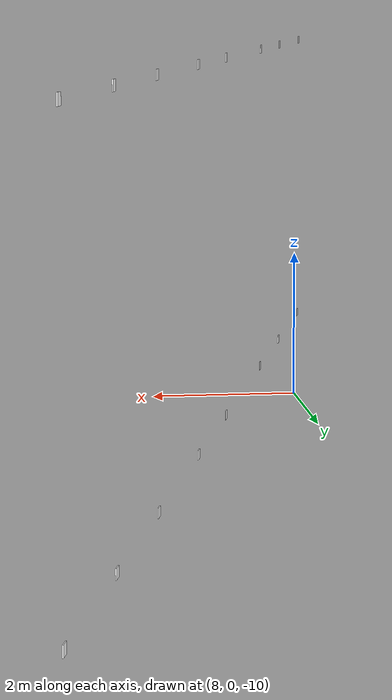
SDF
<?xml version='1.0'?>
<sdf version='1.6'>
  <model name='apriltags'>
    <static>true</static>

    <link name='apriltags_link'>

      <!-- Tag 00000 below element 5.8 (unchanged) -->
      <visual name="Apriltag41_12_00000_visual">
        <pose>11.835702 13.253233 -5.05 0 1.570796 6.00930365</pose>
        <geometry><box><size>0.1 0.1 0.01</size></box></geometry>
        <material>
          <pbr><metal>
            <albedo_map>model://apriltags/textures/tag41_12_00000.png</albedo_map>
            <emissive_map>model://apriltags/textures/tag41_12_00000.png</emissive_map>
            <roughness>1.0</roughness><metalness>0.0</metalness>
          </metal></pbr>
          <ambient>1 1 1 1</ambient><diffuse>1 1 1 1</diffuse><specular>0 0 0 1</specular>
        </material>
      </visual>

      <!-- Tag 00001 below element 5.13 -->
      <visual name="Apriltag41_12_00001_visual">
        <pose>11.835702 13.253233 -9.05 0 1.570796 6.00930365</pose>
        <geometry><box><size>0.1 0.1 0.01</size></box></geometry>
        <material>
          <pbr><metal>
            <albedo_map>model://apriltags/textures/tag41_12_00001.png</albedo_map>
            <emissive_map>model://apriltags/textures/tag41_12_00001.png</emissive_map>
            <roughness>1.0</roughness><metalness>0.0</metalness>
          </metal></pbr>
          <ambient>1 1 1 1</ambient><diffuse>1 1 1 1</diffuse><specular>0 0 0 1</specular>
        </material>
      </visual>

      <!-- Tag 00002 below element 5.9 -->
      <visual name="Apriltag41_12_00002_visual">
        <pose>11.319732 11.416660 -5.05 0 1.570796 6.00930365</pose>
        <geometry><box><size>0.1 0.1 0.01</size></box></geometry>
        <material>
          <pbr><metal>
            <albedo_map>model://apriltags/textures/tag41_12_00002.png</albedo_map>
            <emissive_map>model://apriltags/textures/tag41_12_00002.png</emissive_map>
            <roughness>1.0</roughness><metalness>0.0</metalness>
          </metal></pbr>
          <ambient>1 1 1 1</ambient><diffuse>1 1 1 1</diffuse><specular>0 0 0 1</specular>
        </material>
      </visual>

      <!-- Tag 00003 below element 5.14 -->
      <visual name="Apriltag41_12_00003_visual">
        <pose>11.319732 11.416660 -9.05 0 1.570796 6.00930365</pose>
        <geometry><box><size>0.1 0.1 0.01</size></box></geometry>
        <material>
          <pbr><metal>
            <albedo_map>model://apriltags/textures/tag41_12_00003.png</albedo_map>
            <emissive_map>model://apriltags/textures/tag41_12_00003.png</emissive_map>
            <roughness>1.0</roughness><metalness>0.0</metalness>
          </metal></pbr>
          <ambient>1 1 1 1</ambient><diffuse>1 1 1 1</diffuse><specular>0 0 0 1</specular>
        </material>
      </visual>

      <!-- Tag 00004 below element 5.10 -->
      <visual name="Apriltag41_12_00004_visual">
        <pose>10.803728 9.579964 -5.05 0 1.570796 6.00930365</pose>
        <geometry><box><size>0.1 0.1 0.01</size></box></geometry>
        <material>
          <pbr><metal>
            <albedo_map>model://apriltags/textures/tag41_12_00004.png</albedo_map>
            <emissive_map>model://apriltags/textures/tag41_12_00004.png</emissive_map>
            <roughness>1.0</roughness><metalness>0.0</metalness>
          </metal></pbr>
          <ambient>1 1 1 1</ambient><diffuse>1 1 1 1</diffuse><specular>0 0 0 1</specular>
        </material>
      </visual>

      <!-- Tag 00005 below element 5.15 -->
      <visual name="Apriltag41_12_00005_visual">
        <pose>10.803728 9.579964 -9.05 0 1.570796 6.00930365</pose>
        <geometry><box><size>0.1 0.1 0.01</size></box></geometry>
        <material>
          <pbr><metal>
            <albedo_map>model://apriltags/textures/tag41_12_00005.png</albedo_map>
            <emissive_map>model://apriltags/textures/tag41_12_00005.png</emissive_map>
            <roughness>1.0</roughness><metalness>0.0</metalness>
          </metal></pbr>
          <ambient>1 1 1 1</ambient><diffuse>1 1 1 1</diffuse><specular>0 0 0 1</specular>
        </material>
      </visual>

      <!-- Tag 00006 below element 5.11 -->
      <visual name="Apriltag41_12_00006_visual">
        <pose>10.190416 7.396905 -5.05 0 1.570796 6.00930365</pose>
        <geometry><box><size>0.1 0.1 0.01</size></box></geometry>
        <material>
          <pbr><metal>
            <albedo_map>model://apriltags/textures/tag41_12_00006.png</albedo_map>
            <emissive_map>model://apriltags/textures/tag41_12_00006.png</emissive_map>
            <roughness>1.0</roughness><metalness>0.0</metalness>
          </metal></pbr>
          <ambient>1 1 1 1</ambient><diffuse>1 1 1 1</diffuse><specular>0 0 0 1</specular>
        </material>
      </visual>

      <!-- Tag 00007 below element 5.16 -->
      <visual name="Apriltag41_12_00007_visual">
        <pose>10.190416 7.396905 -9.05 0 1.570796 6.00930365</pose>
        <geometry><box><size>0.1 0.1 0.01</size></box></geometry>
        <material>
          <pbr><metal>
            <albedo_map>model://apriltags/textures/tag41_12_00007.png</albedo_map>
            <emissive_map>model://apriltags/textures/tag41_12_00007.png</emissive_map>
            <roughness>1.0</roughness><metalness>0.0</metalness>
          </metal></pbr>
          <ambient>1 1 1 1</ambient><diffuse>1 1 1 1</diffuse><specular>0 0 0 1</specular>
        </material>
      </visual>

      <!-- Tag 00008 below element 5.12 -->
      <visual name="Apriltag41_12_00008_visual">
        <pose>9.674411 5.560207 -5.05 0 1.570796 6.00930365</pose>
        <geometry><box><size>0.1 0.1 0.01</size></box></geometry>
        <material>
          <pbr><metal>
            <albedo_map>model://apriltags/textures/tag41_12_00008.png</albedo_map>
            <emissive_map>model://apriltags/textures/tag41_12_00008.png</emissive_map>
            <roughness>1.0</roughness><metalness>0.0</metalness>
          </metal></pbr>
          <ambient>1 1 1 1</ambient><diffuse>1 1 1 1</diffuse><specular>0 0 0 1</specular>
        </material>
      </visual>

      <!-- Tag 00009 below element 5.17 -->
      <visual name="Apriltag41_12_00009_visual">
        <pose>9.674411 5.560207 -9.05 0 1.570796 6.00930365</pose>
        <geometry><box><size>0.1 0.1 0.01</size></box></geometry>
        <material>
          <pbr><metal>
            <albedo_map>model://apriltags/textures/tag41_12_00009.png</albedo_map>
            <emissive_map>model://apriltags/textures/tag41_12_00009.png</emissive_map>
            <roughness>1.0</roughness><metalness>0.0</metalness>
          </metal></pbr>
          <ambient>1 1 1 1</ambient><diffuse>1 1 1 1</diffuse><specular>0 0 0 1</specular>
        </material>
      </visual>

      <!-- Tag 00010 below element 5.18 -->
      <visual name="Apriltag41_12_00010_visual">
        <pose>8.883419 2.744705 -5.05 0 1.570796 6.00930365</pose>
        <geometry><box><size>0.1 0.1 0.01</size></box></geometry>
        <material>
          <pbr><metal>
            <albedo_map>model://apriltags/textures/tag41_12_00010.png</albedo_map>
            <emissive_map>model://apriltags/textures/tag41_12_00010.png</emissive_map>
            <roughness>1.0</roughness><metalness>0.0</metalness>
          </metal></pbr>
          <ambient>1 1 1 1</ambient><diffuse>1 1 1 1</diffuse><specular>0 0 0 1</specular>
        </material>
      </visual>

      <!-- Tag 00011 below element 5.1 -->
      <visual name="Apriltag41_12_00011_visual">
        <pose>8.883419 2.744705 -9.05 0 1.570796 6.00930365</pose>
        <geometry><box><size>0.1 0.1 0.01</size></box></geometry>
        <material>
          <pbr><metal>
            <albedo_map>model://apriltags/textures/tag41_12_00011.png</albedo_map>
            <emissive_map>model://apriltags/textures/tag41_12_00011.png</emissive_map>
            <roughness>1.0</roughness><metalness>0.0</metalness>
          </metal></pbr>
          <ambient>1 1 1 1</ambient><diffuse>1 1 1 1</diffuse><specular>0 0 0 1</specular>
        </material>
      </visual>

      <!-- Tag 00012 below element 5.19 -->
      <visual name="Apriltag41_12_00012_visual">
        <pose>8.367420 0.908029 -5.05 0 1.570796 6.00930365</pose>
        <geometry><box><size>0.1 0.1 0.01</size></box></geometry>
        <material>
          <pbr><metal>
            <albedo_map>model://apriltags/textures/tag41_12_00012.png</albedo_map>
            <emissive_map>model://apriltags/textures/tag41_12_00012.png</emissive_map>
            <roughness>1.0</roughness><metalness>0.0</metalness>
          </metal></pbr>
          <ambient>1 1 1 1</ambient><diffuse>1 1 1 1</diffuse><specular>0 0 0 1</specular>
        </material>
      </visual>

      <!-- Tag 00013 below element 5.2 -->
      <visual name="Apriltag41_12_00013_visual">
        <pose>8.367420 0.908029 -9.05 0 1.570796 6.00930365</pose>
        <geometry><box><size>0.1 0.1 0.01</size></box></geometry>
        <material>
          <pbr><metal>
            <albedo_map>model://apriltags/textures/tag41_12_00013.png</albedo_map>
            <emissive_map>model://apriltags/textures/tag41_12_00013.png</emissive_map>
            <roughness>1.0</roughness><metalness>0.0</metalness>
          </metal></pbr>
          <ambient>1 1 1 1</ambient><diffuse>1 1 1 1</diffuse><specular>0 0 0 1</specular>
        </material>
      </visual>

      <!-- Tag 00014 below element 5.20 -->
      <visual name="Apriltag41_12_00014_visual">
        <pose>7.754102 -1.275052 -5.05 0 1.570796 6.00930365</pose>
        <geometry><box><size>0.1 0.1 0.01</size></box></geometry>
        <material>
          <pbr><metal>
            <albedo_map>model://apriltags/textures/tag41_12_00014.png</albedo_map>
            <emissive_map>model://apriltags/textures/tag41_12_00014.png</emissive_map>
            <roughness>1.0</roughness><metalness>0.0</metalness>
          </metal></pbr>
          <ambient>1 1 1 1</ambient><diffuse>1 1 1 1</diffuse><specular>0 0 0 1</specular>
        </material>
      </visual>

      <!-- Tag 00015 below element 5.3 -->
      <visual name="Apriltag41_12_00015_visual">
        <pose>7.754102 -1.275052 -9.05 0 1.570796 6.00930365</pose>
        <geometry><box><size>0.1 0.1 0.01</size></box></geometry>
        <material>
          <pbr><metal>
            <albedo_map>model://apriltags/textures/tag41_12_00015.png</albedo_map>
            <emissive_map>model://apriltags/textures/tag41_12_00015.png</emissive_map>
            <roughness>1.0</roughness><metalness>0.0</metalness>
          </metal></pbr>
          <ambient>1 1 1 1</ambient><diffuse>1 1 1 1</diffuse><specular>0 0 0 1</specular>
        </material>
      </visual>

    </link>
  </model>
</sdf>
